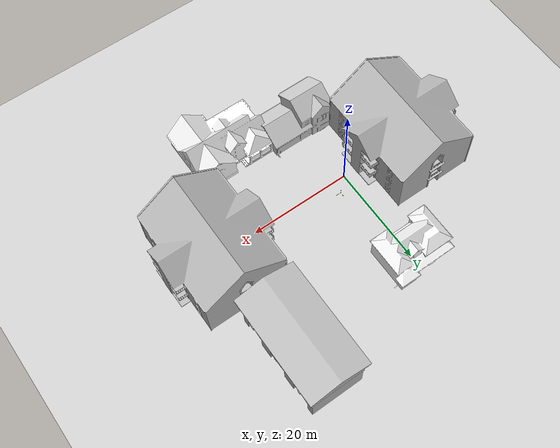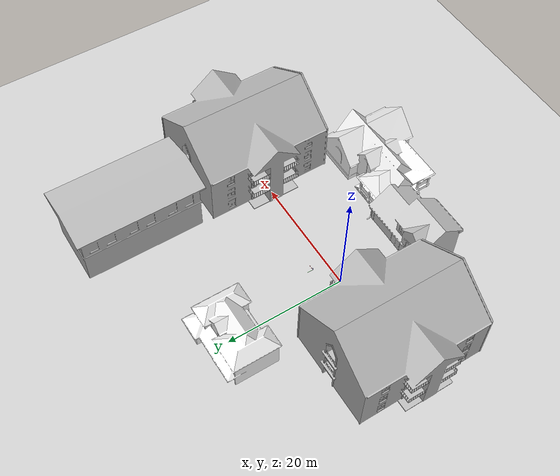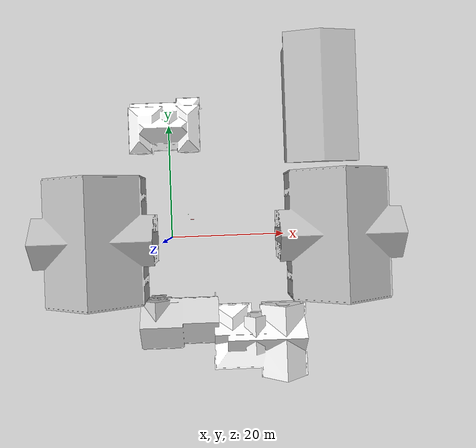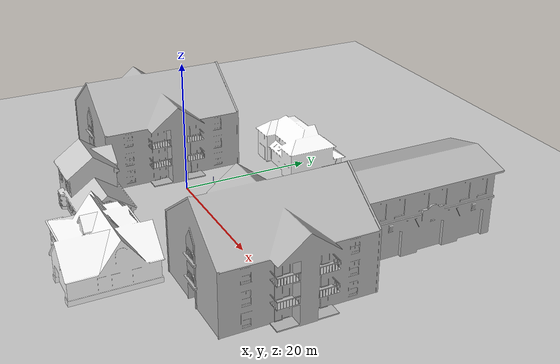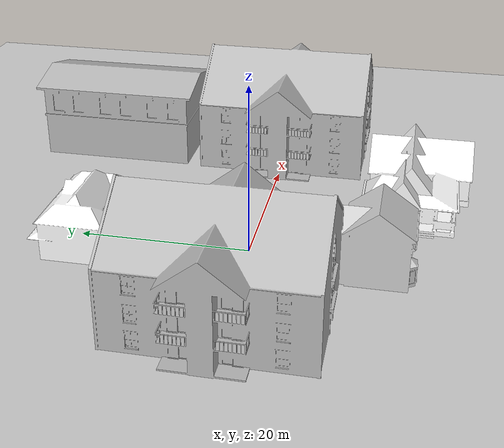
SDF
<sdf version="1.7">
 <world name="default">
  <physics type="ode">
   <max_step_size>0.00000200</max_step_size>
   <real_time_update_rate>500000.000000</real_time_update_rate>
   <real_time_factor>1</real_time_factor>
  </physics>
  <light name="sun" type="directional">
   <pose>0 0 10 0 -0 0</pose>
   <diffuse>0.8 0.8 0.8 1</diffuse>
   <specular>0.2 0.2 0.2 1</specular>
   <attenuation>
    <range>1000</range>
    <constant>0.9</constant>
    <linear>0.01</linear>
    <quadratic>0.001</quadratic>
   </attenuation>
   <direction>-0.5 0.1 -0.9</direction>
   <spot><inner_angle>0</inner_angle><outer_angle>0</outer_angle><falloff>0</falloff></spot>
  </light>
  <model name="ground_plane">
   <static>1</static>
   <link name="link">
    <collision name="collision">
     <geometry><plane><normal>0 0 1</normal><size>100 100</size></plane></geometry>
     <surface>
      <contact><collide_bitmask>65535</collide_bitmask></contact>
      <friction><ode><mu>100</mu><mu2>50</mu2></ode></friction>
     </surface>
    </collision>
    <visual name="visual">
     <cast_shadows>0</cast_shadows>
     <geometry><plane><normal>0 0 1</normal><size>100 100</size></plane></geometry>
     <material>
      <script><uri>file://media/materials/scripts/gazebo.material</uri><name>Gazebo/Grey</name></script>
     </material>
    </visual>
   </link>
  </model>
  <model name="my_velodyne">
   <pose>3.09993 3.09993 1.72 0 0 -5.7e-05</pose>
   <link name="base">
    <pose>0 0 0.029335 0 -0 0</pose>
    <inertial>
     <mass>100000</mass>
     <inertia><ixx>1</ixx><ixy>0</ixy><ixz>0</ixz><iyy>1</iyy><iyz>0</iyz><izz>1</izz></inertia>
    </inertial>
    <collision name="base_collision">
     <geometry><cylinder><radius>0.04267</radius><length>0.05867</length></cylinder></geometry>
    </collision>
    <visual name="base_visual">
     <geometry><cylinder><radius>0.04267</radius><length>0.05867</length></cylinder></geometry>
     <material><ambient>0.25 0.25 0.25 1</ambient></material>
    </visual>
    <visual name="base_visual_x">
     <pose>0.5 0 0 0 1.57 0</pose>
     <geometry><cylinder><radius>0.02</radius><length>1.</length></cylinder></geometry>
     <material><ambient>0.8 0.25 0.25 1</ambient></material>
    </visual>
    <visual name="base_visual_y">
     <pose>0 0.5 0 1.57 0 0</pose>
     <geometry><cylinder><radius>0.02</radius><length>1.</length></cylinder></geometry>
     <material><ambient>0.25 0.8 0.25 1</ambient></material>
    </visual>
    <visual name="base_visual_z">
     <pose>0 0 0.5 0 0 1.57</pose>
     <geometry><cylinder><radius>0.02</radius><length>1.</length></cylinder></geometry>
     <material><ambient>0.25 0.25 0.8 1</ambient></material>
    </visual>
   </link>
   <link name="top">
    <pose>0 0 0.095455 0 -0 0</pose>
    <inertial>
     <mass>0.1</mass>
     <inertia>
      <ixx>9.0623e-05</ixx>
      <iyy>9.0623e-05</iyy>
      <izz>9.1036e-05</izz>
      <ixy>0</ixy>
      <ixz>0</ixz>
      <iyz>0</iyz>
     </inertia>
    </inertial>
    <collision name="top_collision">
     <geometry><cylinder><radius>0.04267</radius><length>0.07357</length></cylinder></geometry>
    </collision>
    <visual name="top_visual">
     <geometry><cylinder><radius>0.04267</radius><length>0.07357</length></cylinder></geometry>
    </visual>
    <sensor name="sensor" type="ray">
     <pose>0 0 -0.004645 1.5707 -0 0</pose>
     <visualize>1</visualize>
     <update_rate>45000</update_rate>
     <ray>
      <noise><type>gaussian</type><mean>0</mean><stddev>0.02</stddev></noise>
      <scan>
       <horizontal>
        <samples>64</samples>
        <resolution>1</resolution>
        <min_angle>-0.535292</min_angle>
        <max_angle>0.186227</max_angle>
       </horizontal>
       <vertical><samples>1</samples><min_angle>0</min_angle><max_angle>0</max_angle></vertical>
      </scan>
      <range><min>0.25</min><max>70</max><resolution>0.01</resolution></range>
     </ray>
     <plugin name="sensor_plugin" filename="libgazebo_ros_laser.so">
      <topicName>/my_velodyne/top/sensor/scan</topicName>
      <frameName>/base</frameName>
     </plugin>
    </sensor>
   </link>
   <joint name="joint" type="revolute">
    <pose>0 0 -0.036785 0 -0 0</pose>
    <parent>base</parent>
    <child>top</child>
    <axis>
     <xyz>0 0 1</xyz>
     <limit><lower>-1e+16</lower><upper>1e+16</upper></limit>
     <dynamics><spring_reference>0</spring_reference><spring_stiffness>0</spring_stiffness></dynamics>
    </axis>
   </joint>
   <plugin name="velodyne_control" filename="./libvelodyne_plugin.so"/>
  </model>
  <model name="apartment">
   <static>1</static>
   <link name="link">
    <collision name="collision">
     <geometry><mesh><uri>model://apartment/meshes/apartment.dae</uri></mesh></geometry>
    </collision>
    <visual name="visual">
     <geometry><mesh><uri>model://apartment/meshes/apartment.dae</uri></mesh></geometry>
    </visual>
   </link>
   <pose>-12.5267 -0.017426 0 0 -0 0</pose>
  </model>
  <model name="apartment_0">
   <static>1</static>
   <link name="link">
    <collision name="collision">
     <geometry><mesh><uri>model://apartment/meshes/apartment.dae</uri></mesh></geometry>
    </collision>
    <visual name="visual">
     <geometry><mesh><uri>model://apartment/meshes/apartment.dae</uri></mesh></geometry>
    </visual>
   </link>
   <pose>28.465 0.01907 0 0 -0 0</pose>
  </model>
  <gravity>0 0 0</gravity>
  <magnetic_field>6e-06 2.3e-05 -4.2e-05</magnetic_field>
  <atmosphere type="adiabatic"/>
  <scene><ambient>0.4 0.4 0.4 1</ambient><background>0.7 0.7 0.7 1</background><shadows>1</shadows></scene>
  <spherical_coordinates>
   <surface_model>EARTH_WGS84</surface_model>
   <latitude_deg>0</latitude_deg>
   <longitude_deg>0</longitude_deg>
   <elevation>0</elevation>
   <heading_deg>0</heading_deg>
  </spherical_coordinates>
  <model name="House 2">
   <static>1</static>
   <link name="link">
    <collision name="collision">
     <geometry><mesh><uri>model://house_2/meshes/house_2.dae</uri><scale>1.5 1.5 1.5</scale></mesh></geometry>
    </collision>
    <visual name="visual">
     <geometry><mesh><uri>model://house_2/meshes/house_2.dae</uri><scale>1.5 1.5 1.5</scale></mesh></geometry>
     <material>
      <script>
       <uri>model://house_2/materials/scripts</uri>
       <uri>model://house_2/materials/textures</uri>
       <uri>model://house_1/materials/textures</uri>
       <name>House_2/Diffuse</name>
      </script>
      <shader type="normal_map_tangent_space">
       <normal_map>model://house_1/materials/textures/House_1_Normal.png</normal_map>
      </shader>
     </material>
    </visual>
   </link>
   <pose>-1.46747 18.9222 0 0 -0 0</pose>
  </model>
  <model name="fire_station">
   <static>1</static>
   <link name="link">
    <collision name="main">
     <pose>0 -0.135 5 0 -0 0</pose>
     <geometry><box><size>19.98 9.68 10</size></box></geometry>
    </collision>
    <collision name="front_top">
     <pose>0 4.957 7 0 -0 0</pose>
     <geometry><box><size>20 0.515 6</size></box></geometry>
    </collision>
    <collision name="column_0">
     <pose>9.333 4.957 2 0 -0 0</pose>
     <geometry><box><size>1.315 0.515 4</size></box></geometry>
    </collision>
    <collision name="column_1">
     <pose>3.33 4.957 2 0 -0 0</pose>
     <geometry><box><size>2.63 0.515 4</size></box></geometry>
    </collision>
    <collision name="column_2">
     <pose>-3.33 4.957 2 0 -0 0</pose>
     <geometry><box><size>2.63 0.515 4</size></box></geometry>
    </collision>
    <collision name="column_3">
     <pose>-9.333 4.957 2 0 -0 0</pose>
     <geometry><box><size>1.315 0.515 4</size></box></geometry>
    </collision>
    <collision name="roof_back">
     <pose>0 -2.742 10.467 0.25 -0 0</pose>
     <geometry><box><size>21.47 6.12 0.28</size></box></geometry>
    </collision>
    <collision name="roof_front">
     <pose>0 3.12 10.467 -0.25 0 0</pose>
     <geometry><box><size>21.47 6.12 0.28</size></box></geometry>
    </collision>
    <collision name="roof_base">
     <pose>0 0.188 9.705 0 -0 0</pose>
     <geometry><box><size>21.47 11.86 0.28</size></box></geometry>
    </collision>
    <collision name="roof_filling_0">
     <pose>0 0.188 9.985 0 -0 0</pose>
     <geometry><box><size>21.47 9.53 0.28</size></box></geometry>
    </collision>
    <collision name="roof_filling_1">
     <pose>0 0.188 10.14 0 -0 0</pose>
     <geometry><box><size>21.47 8.41 0.28</size></box></geometry>
    </collision>
    <collision name="roof_filling_2">
     <pose>0 0.188 10.42 0 -0 0</pose>
     <geometry><box><size>21.47 6.25 0.28</size></box></geometry>
    </collision>
    <collision name="roof_filling_3">
     <pose>0 0.188 10.7 0 -0 0</pose>
     <geometry><box><size>21.47 4.05 0.28</size></box></geometry>
    </collision>
    <collision name="roof_filling_4">
     <pose>0 0.188 10.98 0 -0 0</pose>
     <geometry><box><size>21.47 1.83 0.28</size></box></geometry>
    </collision>
    <visual name="visual">
     <geometry><mesh><uri>model://fire_station/meshes/fire_station.dae</uri></mesh></geometry>
    </visual>
   </link>
   <pose>25.6513 22.6953 0 0 0 -1.5708</pose>
  </model>
  <model name="House 1">
   <static>1</static>
   <link name="link">
    <collision name="collision">
     <geometry><mesh><uri>model://house_1/meshes/house_1.dae</uri><scale>1.5 1.5 1.5</scale></mesh></geometry>
    </collision>
    <visual name="visual">
     <geometry><mesh><uri>model://house_1/meshes/house_1.dae</uri><scale>1.5 1.5 1.5</scale></mesh></geometry>
     <material>
      <script>
       <uri>model://house_1/materials/scripts</uri>
       <uri>model://house_1/materials/textures</uri>
       <name>House_1/Diffuse</name>
      </script>
      <shader type="normal_map_tangent_space"><normal_map>House_1_Normal.png</normal_map></shader>
     </material>
    </visual>
   </link>
   <pose>15.189 -17.924 0 0 -0 0</pose>
  </model>
  <model name="House 3">
   <static>1</static>
   <link name="link">
    <collision name="collision">
     <geometry><mesh><uri>model://house_3/meshes/house_3.dae</uri><scale>1.5 1.5 1.5</scale></mesh></geometry>
    </collision>
    <visual name="visual">
     <geometry><mesh><uri>model://house_3/meshes/house_3.dae</uri><scale>1.5 1.5 1.5</scale></mesh></geometry>
     <material>
      <script>
       <uri>model://house_3/materials/scripts</uri>
       <uri>model://house_3/materials/textures</uri>
       <uri>model://house_1/materials/textures</uri>
       <name>House_3/Diffuse</name>
      </script>
      <shader type="normal_map_tangent_space">
       <normal_map>model://house_1/materials/textures/House_1_Normal.png</normal_map>
      </shader>
     </material>
    </visual>
   </link>
   <pose>1.77349 -14.5522 0 0 -0 0</pose>
  </model>
 </world>
</sdf>
